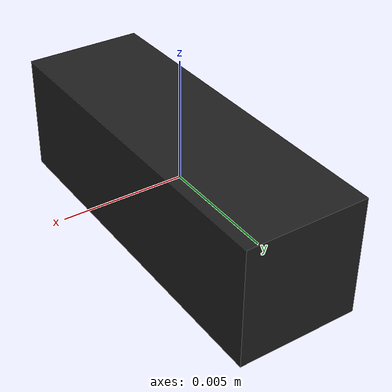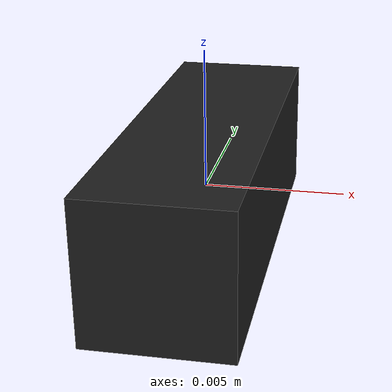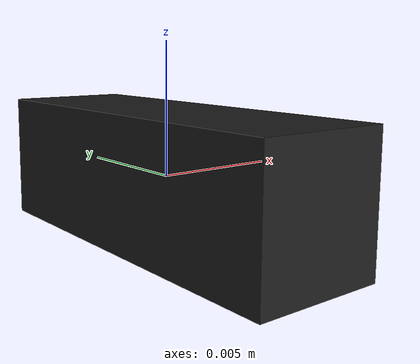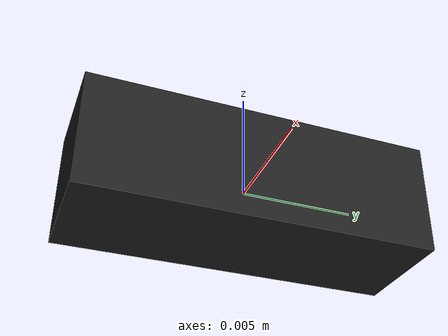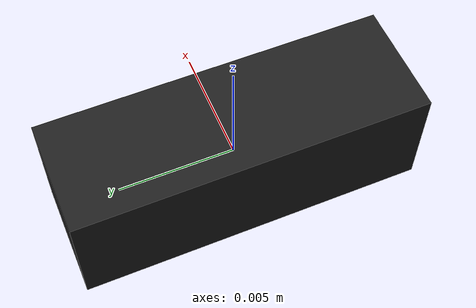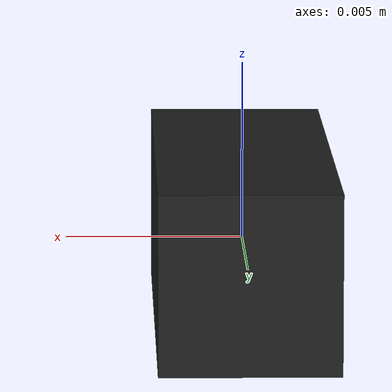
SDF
<?xml version="1.0" ?>
<sdf version="1.4">
  <model name="sonar_ros">
    <link name="link">
      <pose>0 0 0 0 0 0</pose>
      <inertial>
        <pose>0 0 0 0 0 0</pose>
        <mass>0.000000000000001</mass>
        <inertia>
          <ixx>2.08333333e-7</ixx>
          <ixy>0</ixy>
          <ixz>0</ixz>
          <iyy>2.08333333e-7</iyy>
          <iyz>0</iyz>
          <izz>4.16666667e-8</izz>
        </inertia>
      </inertial>
      <visual name="visual">
        <geometry>
          <box>
            <size>0.005 0.015 0.005</size>
          </box>
        </geometry>
        <material>
          <script>
            <name>Gazebo/Black</name>
          </script>
        </material>
      </visual>
      <sensor name='sonar_ros' type='ray'>
        <always_on>1</always_on>
        <visualize>1</visualize>
        <update_rate>30</update_rate>
        <ray>
          <scan>
            <horizontal>
              <samples>5</samples>
              <resolution>1</resolution>
              <min_angle>-0.12</min_angle>
              <max_angle>0.12</max_angle>
            </horizontal>
            <vertical>
              <samples>5</samples>
              <resolution>1</resolution>
              <min_angle>-0.12</min_angle>
              <max_angle>0.12</max_angle>
            </vertical>
          </scan>
          <range>
            <min>0.1</min>
            <max>50</max>
            <resolution>0.01</resolution>
          </range>
          <noise>
            <type>gaussian</type>
            <mean>0</mean>
            <stddev>0.01</stddev>
          </noise>
        </ray>
        <plugin name='sonar_ros' filename='libgazebo_ros_ray_sensor.so'>
          <ros>
            <namespace>/UAV</namespace>
          </ros>
          <frame_name>/UAV/sonar</frame_name>
          <output_type>sensor_msgs/Range</output_type>
          <radiation_type>ultrasound</radiation_type>
        </plugin>
        <pose>0 0 0 0 1.57079 0</pose>
      </sensor>
    </link>
  </model>
</sdf>
